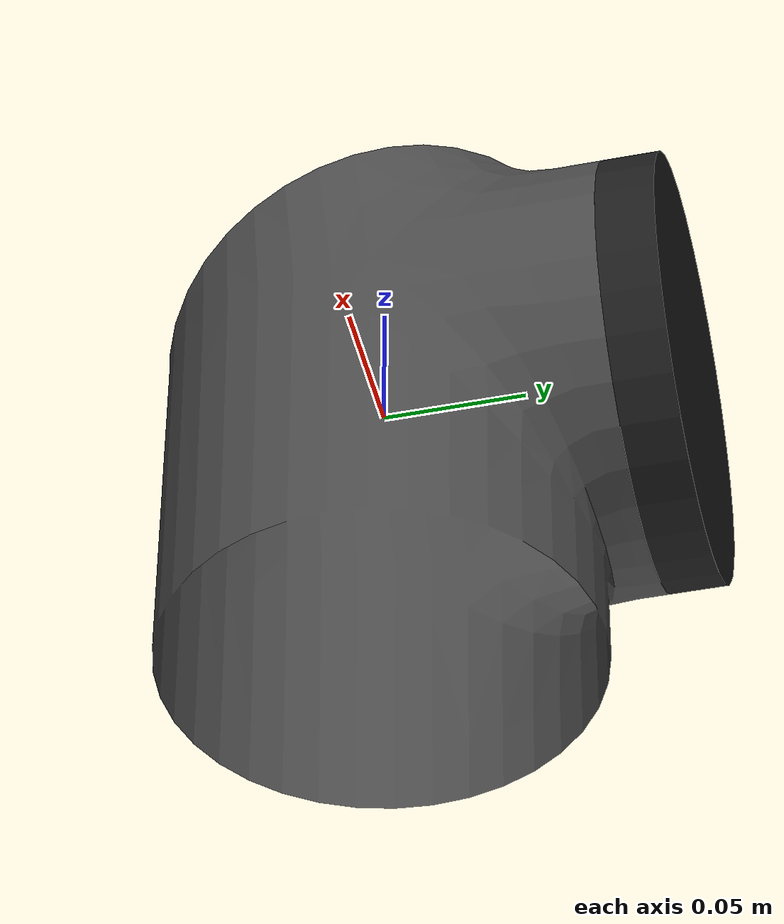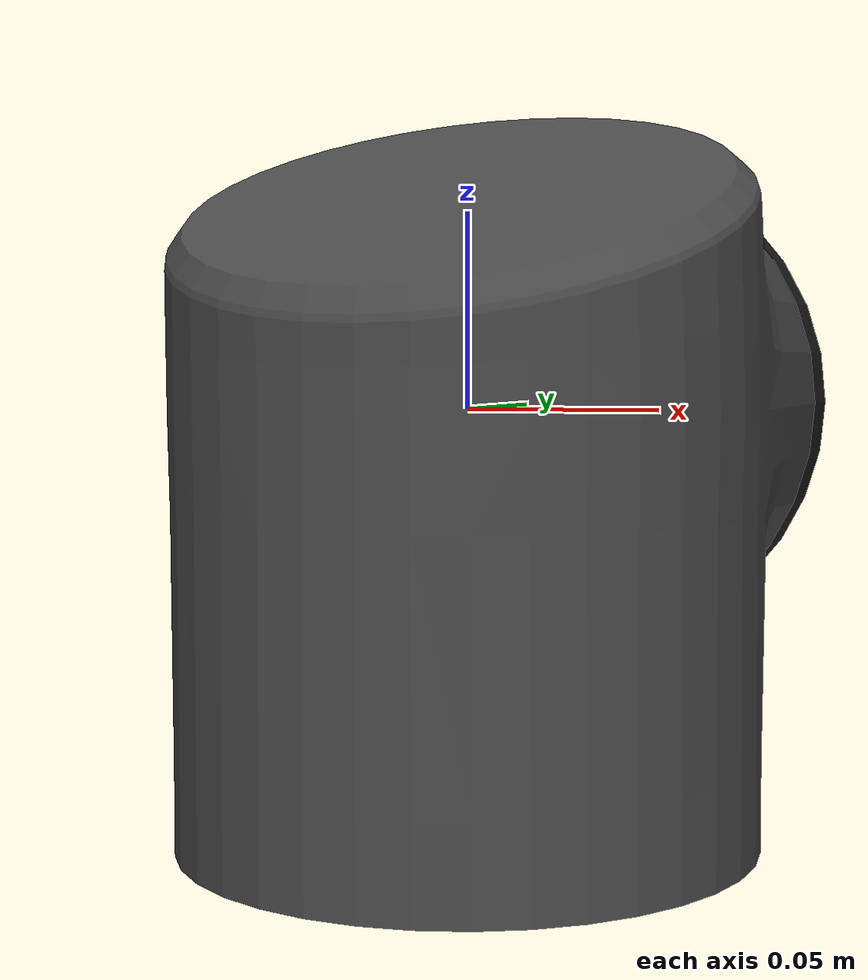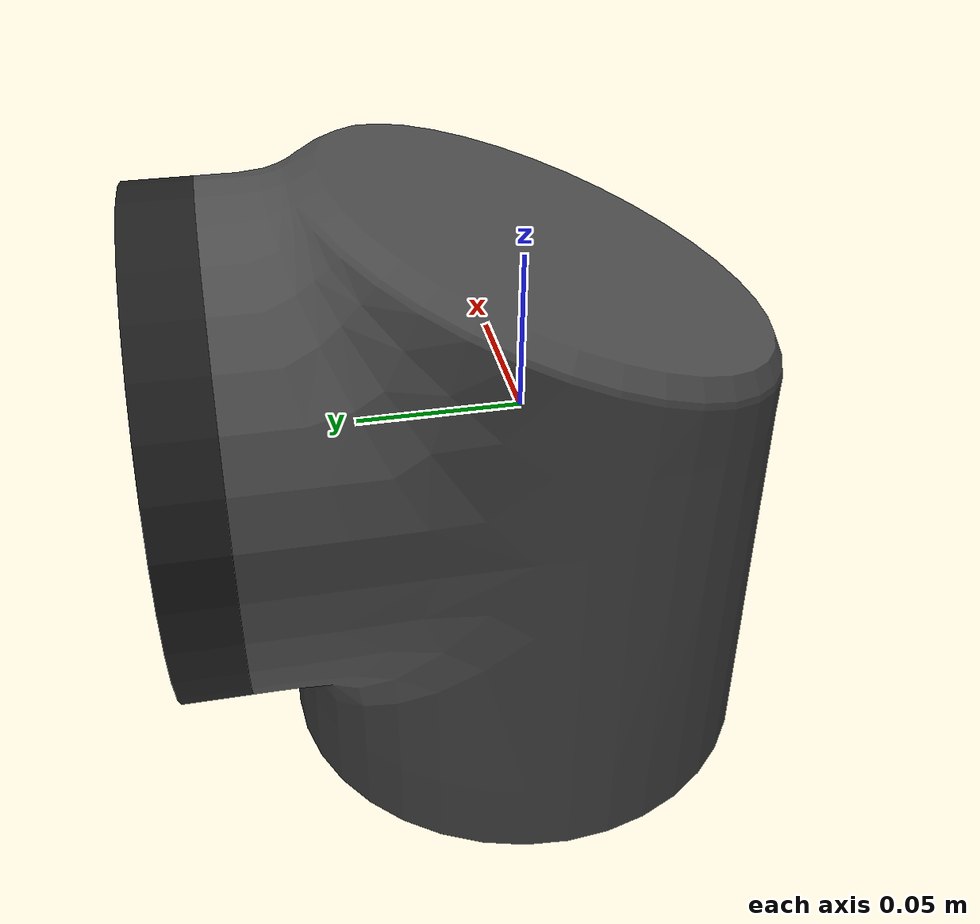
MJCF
<mujoco model="shoulder">
  <default>
    <default class="visual">
      <geom group="2" type="mesh" contype="0" conaffinity="0"/>
    </default>
    <default class="collision">
      <geom group="3" type="mesh"/>
    </default>
  </default>
  <asset>
    <texture type="2d" name="UR15_DIFF_8bit_2K" file="UR15_DIFF_8bit_2K.png"/>
    <material name="Metal_DarkGray_002_COLOR_0" texture="UR15_DIFF_8bit_2K" specular="0.0" shininess="0.25"/>
    <texture type="2d" name="UR15_DIFF_8bit_2K" file="UR15_DIFF_8bit_2K.png"/>
    <material name="Rubber_Black_002_COLOR_0" texture="UR15_DIFF_8bit_2K" specular="0.0" shininess="0.25"/>
    <mesh file="shoulder_0.obj"/>
    <mesh file="shoulder_1.obj"/>
  </asset>
  <worldbody>
    <body name="shoulder">
      <geom mesh="shoulder_0" material="Rubber_Black_002_COLOR_0" class="visual"/>
      <geom mesh="shoulder_1" material="Metal_DarkGray_002_COLOR_0" class="visual"/>
      <geom mesh="shoulder_0" class="collision"/>
      <geom mesh="shoulder_1" class="collision"/>
    </body>
  </worldbody>
</mujoco>
